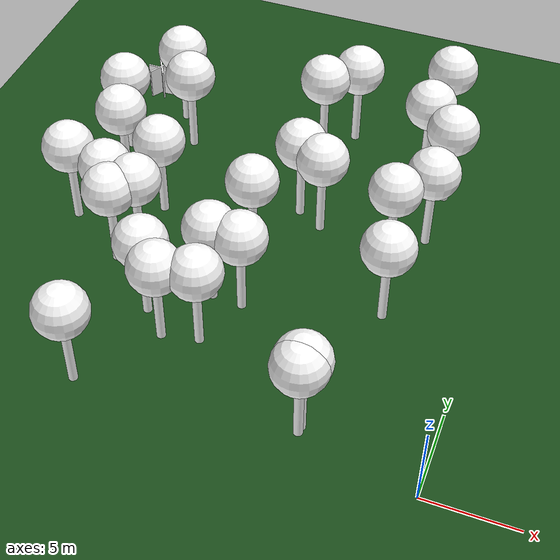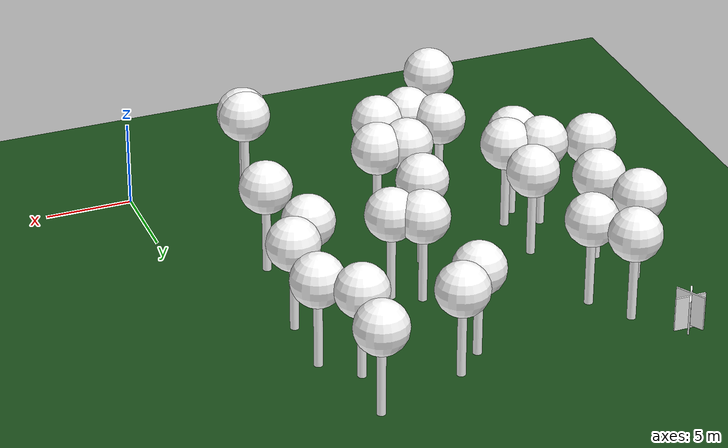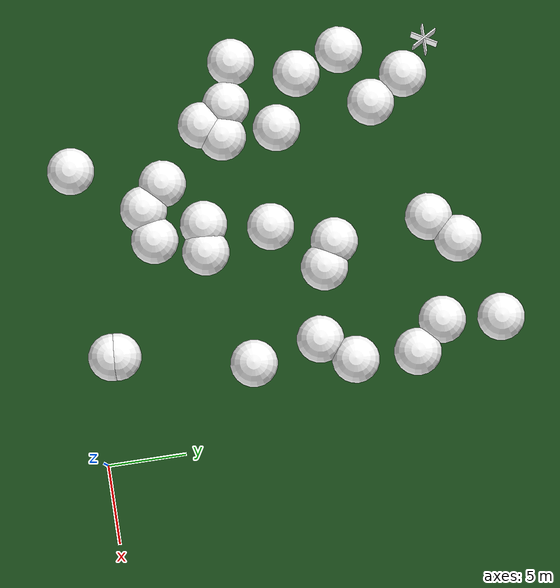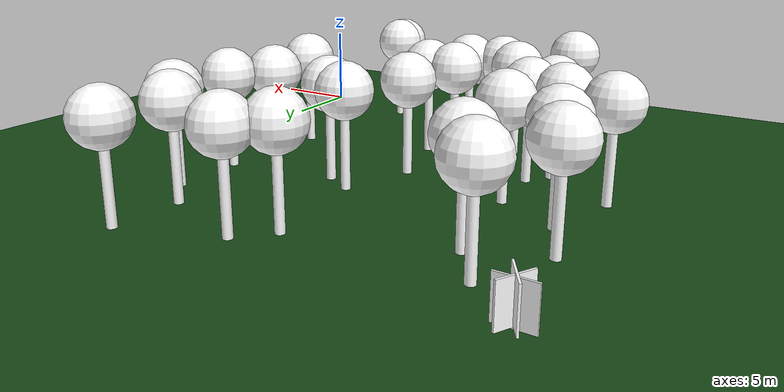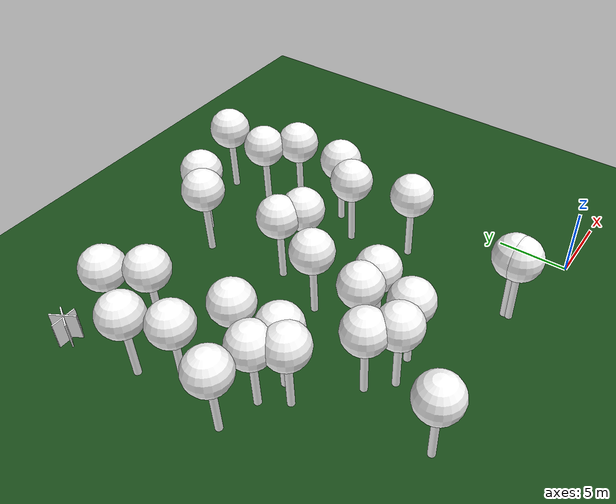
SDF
<sdf version="1.8">
 <world name="forest_world">
  <model name="fire_2">
   <pose>-23.95 23.95 1.00 0 0 0.00</pose>
   <static>true</static>
   <link name="fire_link">
    <visual name="fire_2_fire_main_0">
     <geometry><box><size>1.80 0.10 2.00</size></box></geometry>
     <material>
      <ambient>0.7 0.35 0.0 1</ambient>
      <diffuse>1 1 1 1</diffuse>
      <specular>0 0 0 1</specular>
      <emissive>0 0 0 1</emissive>
      <pbr>
       <metal><albedo_map>textures/fire.png</albedo_map><metalness>0.0</metalness><roughness>0.6</roughness></metal>
      </pbr>
     </material>
     <transparency>0.0</transparency>
     <cast_shadows>false</cast_shadows>
    </visual>
    <visual name="fire_2_fire_60_1">
     <pose>0.00 0.00 0.10 0 0 1.05</pose>
     <geometry><box><size>1.80 0.10 2.00</size></box></geometry>
     <material>
      <ambient>0.7 0.35 0.0 1</ambient>
      <diffuse>1 1 1 1</diffuse>
      <specular>0 0 0 1</specular>
      <emissive>0 0 0 1</emissive>
      <pbr>
       <metal><albedo_map>textures/fire.png</albedo_map><metalness>0.0</metalness><roughness>0.6</roughness></metal>
      </pbr>
     </material>
     <transparency>0.0</transparency>
     <cast_shadows>false</cast_shadows>
    </visual>
    <visual name="fire_2_fire_120_2">
     <pose>0.00 0.00 0.20 0 0 2.09</pose>
     <geometry><box><size>1.80 0.10 2.00</size></box></geometry>
     <material>
      <ambient>0.7 0.35 0.0 1</ambient>
      <diffuse>1 1 1 1</diffuse>
      <specular>0 0 0 1</specular>
      <emissive>0 0 0 1</emissive>
      <pbr>
       <metal><albedo_map>textures/fire.png</albedo_map><metalness>0.0</metalness><roughness>0.6</roughness></metal>
      </pbr>
     </material>
     <transparency>0.0</transparency>
     <cast_shadows>false</cast_shadows>
    </visual>
    <light type="point" name="fire_2_light_0">
     <pose>0.40 0.00 0.50 0 0 0</pose>
     <diffuse>1.0 0.7 0.3 1</diffuse>
     <specular>1.0 0.8 0.3 1</specular>
     <intensity>2</intensity>
     <attenuation>
      <range>2</range>
      <constant>0.1</constant>
      <linear>0.05</linear>
      <quadratic>0.02</quadratic>
     </attenuation>
     <cast_shadows>false</cast_shadows>
    </light>
    <light type="point" name="fire_2_light_1">
     <pose>-0.20 0.35 0.50 0 0 0</pose>
     <diffuse>1.0 0.7 0.3 1</diffuse>
     <specular>1.0 0.8 0.3 1</specular>
     <intensity>2</intensity>
     <attenuation>
      <range>2</range>
      <constant>0.1</constant>
      <linear>0.05</linear>
      <quadratic>0.02</quadratic>
     </attenuation>
     <cast_shadows>false</cast_shadows>
    </light>
    <light type="point" name="fire_2_light_2">
     <pose>-0.20 -0.35 0.50 0 0 0</pose>
     <diffuse>1.0 0.7 0.3 1</diffuse>
     <specular>1.0 0.8 0.3 1</specular>
     <intensity>2</intensity>
     <attenuation>
      <range>2</range>
      <constant>0.1</constant>
      <linear>0.05</linear>
      <quadratic>0.02</quadratic>
     </attenuation>
     <cast_shadows>false</cast_shadows>
    </light>
   </link>
   <plugin filename="libignition-gazebo-pose-publisher-system.so" name="ignition::gazebo::systems::PosePublisher">
    <frame_id>world</frame_id>
    <publish_link_pose>true</publish_link_pose>
    <use_pose_vector_msg>true</use_pose_vector_msg>
    <static_publisher>true</static_publisher>
    <static_update_frequency>1</static_update_frequency>
   </plugin>
  </model>
  <model name="tree_simple498">
   <static>1</static>
   <link name="link">
    <pose>0 0 0.1 0 -0 0</pose>
    <collision name="collision_trunk">
     <pose>0 0 2 0 -0 0</pose>
     <geometry><cylinder><radius>0.25</radius><length>4</length></cylinder></geometry>
    </collision>
    <collision name="collision_treetop">
     <pose>0 0 5.2 0 -0 0</pose>
     <geometry><sphere><radius>1.5</radius></sphere></geometry>
    </collision>
    <visual name="trunk">
     <pose>0 0 2 0 -0 0</pose>
     <geometry><cylinder><radius>0.25</radius><length>4</length></cylinder></geometry>
     <material>
      <ambient>0.5 0.5 0.5 1</ambient>
      <diffuse>1.0 1.0 1.0 1</diffuse>
      <specular>0.0 0.0 0.0 1</specular>
      <pbr>
       <metal>
        <albedo_map>../worlds/textures/tree_simple_trunk.jpg</albedo_map>
        <metalness>0.0</metalness>
        <roughness>0.8</roughness>
       </metal>
      </pbr>
     </material>
    </visual>
    <visual name="treetop">
     <pose>0 0 5.2 0 -0 0</pose>
     <geometry><sphere><radius>1.5</radius></sphere></geometry>
     <material>
      <ambient>0.5 0.5 0.5 1</ambient>
      <diffuse>1.0 1.0 1.0 1</diffuse>
      <specular>0.0 0.0 0.0 1</specular>
      <pbr>
       <metal>
        <albedo_map>../worlds/textures/tree_simple_treetop.jpg</albedo_map>
        <metalness>0.0</metalness>
        <roughness>0.9</roughness>
       </metal>
      </pbr>
     </material>
    </visual>
   </link>
   <pose>-20.062069779 9.09254194943 0 0 -0 0</pose>
  </model>
  <model name="tree_simple488">
   <static>1</static>
   <link name="link">
    <pose>0 0 0.1 0 -0 0</pose>
    <collision name="collision_trunk">
     <pose>0 0 2 0 -0 0</pose>
     <geometry><cylinder><radius>0.25</radius><length>4</length></cylinder></geometry>
    </collision>
    <collision name="collision_treetop">
     <pose>0 0 5.2 0 -0 0</pose>
     <geometry><sphere><radius>1.5</radius></sphere></geometry>
    </collision>
    <visual name="trunk">
     <pose>0 0 2 0 -0 0</pose>
     <geometry><cylinder><radius>0.25</radius><length>4</length></cylinder></geometry>
     <material>
      <ambient>0.5 0.5 0.5 1</ambient>
      <diffuse>1.0 1.0 1.0 1</diffuse>
      <specular>0.0 0.0 0.0 1</specular>
      <pbr>
       <metal>
        <albedo_map>../worlds/textures/tree_simple_trunk.jpg</albedo_map>
        <metalness>0.0</metalness>
        <roughness>0.8</roughness>
       </metal>
      </pbr>
     </material>
    </visual>
    <visual name="treetop">
     <pose>0 0 5.2 0 -0 0</pose>
     <geometry><sphere><radius>1.5</radius></sphere></geometry>
     <material>
      <ambient>0.5 0.5 0.5 1</ambient>
      <diffuse>1.0 1.0 1.0 1</diffuse>
      <specular>0.0 0.0 0.0 1</specular>
      <pbr>
       <metal>
        <albedo_map>../worlds/textures/tree_simple_treetop.jpg</albedo_map>
        <metalness>0.0</metalness>
        <roughness>0.9</roughness>
       </metal>
      </pbr>
     </material>
    </visual>
   </link>
   <pose>-13.1215818691 12.435953241 0 0 -0 0</pose>
  </model>
  <model name="tree_simple479">
   <static>1</static>
   <link name="link">
    <pose>0 0 0.1 0 -0 0</pose>
    <collision name="collision_trunk">
     <pose>0 0 2 0 -0 0</pose>
     <geometry><cylinder><radius>0.25</radius><length>4</length></cylinder></geometry>
    </collision>
    <collision name="collision_treetop">
     <pose>0 0 5.2 0 -0 0</pose>
     <geometry><sphere><radius>1.5</radius></sphere></geometry>
    </collision>
    <visual name="trunk">
     <pose>0 0 2 0 -0 0</pose>
     <geometry><cylinder><radius>0.25</radius><length>4</length></cylinder></geometry>
     <material>
      <ambient>0.5 0.5 0.5 1</ambient>
      <diffuse>1.0 1.0 1.0 1</diffuse>
      <specular>0.0 0.0 0.0 1</specular>
      <pbr>
       <metal>
        <albedo_map>../worlds/textures/tree_simple_trunk.jpg</albedo_map>
        <metalness>0.0</metalness>
        <roughness>0.8</roughness>
       </metal>
      </pbr>
     </material>
    </visual>
    <visual name="treetop">
     <pose>0 0 5.2 0 -0 0</pose>
     <geometry><sphere><radius>1.5</radius></sphere></geometry>
     <material>
      <ambient>0.5 0.5 0.5 1</ambient>
      <diffuse>1.0 1.0 1.0 1</diffuse>
      <specular>0.0 0.0 0.0 1</specular>
      <pbr>
       <metal>
        <albedo_map>../worlds/textures/tree_simple_treetop.jpg</albedo_map>
        <metalness>0.0</metalness>
        <roughness>0.9</roughness>
       </metal>
      </pbr>
     </material>
    </visual>
   </link>
   <pose>-12.2778199556 22.3020251283 0 0 -0 0</pose>
  </model>
  <model name="tree_simple471">
   <static>1</static>
   <link name="link">
    <pose>0 0 0.1 0 -0 0</pose>
    <collision name="collision_trunk">
     <pose>0 0 2 0 -0 0</pose>
     <geometry><cylinder><radius>0.25</radius><length>4</length></cylinder></geometry>
    </collision>
    <collision name="collision_treetop">
     <pose>0 0 5.2 0 -0 0</pose>
     <geometry><sphere><radius>1.5</radius></sphere></geometry>
    </collision>
    <visual name="trunk">
     <pose>0 0 2 0 -0 0</pose>
     <geometry><cylinder><radius>0.25</radius><length>4</length></cylinder></geometry>
     <material>
      <ambient>0.5 0.5 0.5 1</ambient>
      <diffuse>1.0 1.0 1.0 1</diffuse>
      <specular>0.0 0.0 0.0 1</specular>
      <pbr>
       <metal>
        <albedo_map>../worlds/textures/tree_simple_trunk.jpg</albedo_map>
        <metalness>0.0</metalness>
        <roughness>0.8</roughness>
       </metal>
      </pbr>
     </material>
    </visual>
    <visual name="treetop">
     <pose>0 0 5.2 0 -0 0</pose>
     <geometry><sphere><radius>1.5</radius></sphere></geometry>
     <material>
      <ambient>0.5 0.5 0.5 1</ambient>
      <diffuse>1.0 1.0 1.0 1</diffuse>
      <specular>0.0 0.0 0.0 1</specular>
      <pbr>
       <metal>
        <albedo_map>../worlds/textures/tree_simple_treetop.jpg</albedo_map>
        <metalness>0.0</metalness>
        <roughness>0.9</roughness>
       </metal>
      </pbr>
     </material>
    </visual>
   </link>
   <pose>-4.10985349052 16.4703272545 0 0 -0 0</pose>
  </model>
  <model name="tree_simple466">
   <static>1</static>
   <link name="link">
    <pose>0 0 0.1 0 -0 0</pose>
    <collision name="collision_trunk">
     <pose>0 0 2 0 -0 0</pose>
     <geometry><cylinder><radius>0.25</radius><length>4</length></cylinder></geometry>
    </collision>
    <collision name="collision_treetop">
     <pose>0 0 5.2 0 -0 0</pose>
     <geometry><sphere><radius>1.5</radius></sphere></geometry>
    </collision>
    <visual name="trunk">
     <pose>0 0 2 0 -0 0</pose>
     <geometry><cylinder><radius>0.25</radius><length>4</length></cylinder></geometry>
     <material>
      <ambient>0.5 0.5 0.5 1</ambient>
      <diffuse>1.0 1.0 1.0 1</diffuse>
      <specular>0.0 0.0 0.0 1</specular>
      <pbr>
       <metal>
        <albedo_map>../worlds/textures/tree_simple_trunk.jpg</albedo_map>
        <metalness>0.0</metalness>
        <roughness>0.8</roughness>
       </metal>
      </pbr>
     </material>
    </visual>
    <visual name="treetop">
     <pose>0 0 5.2 0 -0 0</pose>
     <geometry><sphere><radius>1.5</radius></sphere></geometry>
     <material>
      <ambient>0.5 0.5 0.5 1</ambient>
      <diffuse>1.0 1.0 1.0 1</diffuse>
      <specular>0.0 0.0 0.0 1</specular>
      <pbr>
       <metal>
        <albedo_map>../worlds/textures/tree_simple_treetop.jpg</albedo_map>
        <metalness>0.0</metalness>
        <roughness>0.9</roughness>
       </metal>
      </pbr>
     </material>
    </visual>
   </link>
   <pose>-5.77986608036 22.173723886 0 0 -0 0</pose>
  </model>
  <model name="tree_simple460">
   <static>1</static>
   <link name="link">
    <pose>0 0 0.1 0 -0 0</pose>
    <collision name="collision_trunk">
     <pose>0 0 2 0 -0 0</pose>
     <geometry><cylinder><radius>0.25</radius><length>4</length></cylinder></geometry>
    </collision>
    <collision name="collision_treetop">
     <pose>0 0 5.2 0 -0 0</pose>
     <geometry><sphere><radius>1.5</radius></sphere></geometry>
    </collision>
    <visual name="trunk">
     <pose>0 0 2 0 -0 0</pose>
     <geometry><cylinder><radius>0.25</radius><length>4</length></cylinder></geometry>
     <material>
      <ambient>0.5 0.5 0.5 1</ambient>
      <diffuse>1.0 1.0 1.0 1</diffuse>
      <specular>0.0 0.0 0.0 1</specular>
      <pbr>
       <metal>
        <albedo_map>../worlds/textures/tree_simple_trunk.jpg</albedo_map>
        <metalness>0.0</metalness>
        <roughness>0.8</roughness>
       </metal>
      </pbr>
     </material>
    </visual>
    <visual name="treetop">
     <pose>0 0 5.2 0 -0 0</pose>
     <geometry><sphere><radius>1.5</radius></sphere></geometry>
     <material>
      <ambient>0.5 0.5 0.5 1</ambient>
      <diffuse>1.0 1.0 1.0 1</diffuse>
      <specular>0.0 0.0 0.0 1</specular>
      <pbr>
       <metal>
        <albedo_map>../worlds/textures/tree_simple_treetop.jpg</albedo_map>
        <metalness>0.0</metalness>
        <roughness>0.9</roughness>
       </metal>
      </pbr>
     </material>
    </visual>
   </link>
   <pose>-19.1263542494 10.273291852 0 0 -0 0</pose>
  </model>
  <model name="tree_simple453">
   <static>1</static>
   <link name="link">
    <pose>0 0 0.1 0 -0 0</pose>
    <collision name="collision_trunk">
     <pose>0 0 2 0 -0 0</pose>
     <geometry><cylinder><radius>0.25</radius><length>4</length></cylinder></geometry>
    </collision>
    <collision name="collision_treetop">
     <pose>0 0 5.2 0 -0 0</pose>
     <geometry><sphere><radius>1.5</radius></sphere></geometry>
    </collision>
    <visual name="trunk">
     <pose>0 0 2 0 -0 0</pose>
     <geometry><cylinder><radius>0.25</radius><length>4</length></cylinder></geometry>
     <material>
      <ambient>0.5 0.5 0.5 1</ambient>
      <diffuse>1.0 1.0 1.0 1</diffuse>
      <specular>0.0 0.0 0.0 1</specular>
      <pbr>
       <metal>
        <albedo_map>../worlds/textures/tree_simple_trunk.jpg</albedo_map>
        <metalness>0.0</metalness>
        <roughness>0.8</roughness>
       </metal>
      </pbr>
     </material>
    </visual>
    <visual name="treetop">
     <pose>0 0 5.2 0 -0 0</pose>
     <geometry><sphere><radius>1.5</radius></sphere></geometry>
     <material>
      <ambient>0.5 0.5 0.5 1</ambient>
      <diffuse>1.0 1.0 1.0 1</diffuse>
      <specular>0.0 0.0 0.0 1</specular>
      <pbr>
       <metal>
        <albedo_map>../worlds/textures/tree_simple_treetop.jpg</albedo_map>
        <metalness>0.0</metalness>
        <roughness>0.9</roughness>
       </metal>
      </pbr>
     </material>
    </visual>
   </link>
   <pose>-12.135251061 8.19022164755 0 0 -0 0</pose>
  </model>
  <model name="tree_simple444">
   <static>1</static>
   <link name="link">
    <pose>0 0 0.1 0 -0 0</pose>
    <collision name="collision_trunk">
     <pose>0 0 2 0 -0 0</pose>
     <geometry><cylinder><radius>0.25</radius><length>4</length></cylinder></geometry>
    </collision>
    <collision name="collision_treetop">
     <pose>0 0 5.2 0 -0 0</pose>
     <geometry><sphere><radius>1.5</radius></sphere></geometry>
    </collision>
    <visual name="trunk">
     <pose>0 0 2 0 -0 0</pose>
     <geometry><cylinder><radius>0.25</radius><length>4</length></cylinder></geometry>
     <material>
      <ambient>0.5 0.5 0.5 1</ambient>
      <diffuse>1.0 1.0 1.0 1</diffuse>
      <specular>0.0 0.0 0.0 1</specular>
      <pbr>
       <metal>
        <albedo_map>../worlds/textures/tree_simple_trunk.jpg</albedo_map>
        <metalness>0.0</metalness>
        <roughness>0.8</roughness>
       </metal>
      </pbr>
     </material>
    </visual>
    <visual name="treetop">
     <pose>0 0 5.2 0 -0 0</pose>
     <geometry><sphere><radius>1.5</radius></sphere></geometry>
     <material>
      <ambient>0.5 0.5 0.5 1</ambient>
      <diffuse>1.0 1.0 1.0 1</diffuse>
      <specular>0.0 0.0 0.0 1</specular>
      <pbr>
       <metal>
        <albedo_map>../worlds/textures/tree_simple_treetop.jpg</albedo_map>
        <metalness>0.0</metalness>
        <roughness>0.9</roughness>
       </metal>
      </pbr>
     </material>
    </visual>
   </link>
   <pose>-23.7375888222 11.4825776361 0 0 -0 0</pose>
  </model>
  <model name="tree_simple424">
   <static>1</static>
   <link name="link">
    <pose>0 0 0.1 0 -0 0</pose>
    <collision name="collision_trunk">
     <pose>0 0 2 0 -0 0</pose>
     <geometry><cylinder><radius>0.25</radius><length>4</length></cylinder></geometry>
    </collision>
    <collision name="collision_treetop">
     <pose>0 0 5.2 0 -0 0</pose>
     <geometry><sphere><radius>1.5</radius></sphere></geometry>
    </collision>
    <visual name="trunk">
     <pose>0 0 2 0 -0 0</pose>
     <geometry><cylinder><radius>0.25</radius><length>4</length></cylinder></geometry>
     <material>
      <ambient>0.5 0.5 0.5 1</ambient>
      <diffuse>1.0 1.0 1.0 1</diffuse>
      <specular>0.0 0.0 0.0 1</specular>
      <pbr>
       <metal>
        <albedo_map>../worlds/textures/tree_simple_trunk.jpg</albedo_map>
        <metalness>0.0</metalness>
        <roughness>0.8</roughness>
       </metal>
      </pbr>
     </material>
    </visual>
    <visual name="treetop">
     <pose>0 0 5.2 0 -0 0</pose>
     <geometry><sphere><radius>1.5</radius></sphere></geometry>
     <material>
      <ambient>0.5 0.5 0.5 1</ambient>
      <diffuse>1.0 1.0 1.0 1</diffuse>
      <specular>0.0 0.0 0.0 1</specular>
      <pbr>
       <metal>
        <albedo_map>../worlds/textures/tree_simple_treetop.jpg</albedo_map>
        <metalness>0.0</metalness>
        <roughness>0.9</roughness>
       </metal>
      </pbr>
     </material>
    </visual>
   </link>
   <pose>-16.7770993139 6.12178979124 0 0 -0 0</pose>
  </model>
  <model name="tree_simple393">
   <static>1</static>
   <link name="link">
    <pose>0 0 0.1 0 -0 0</pose>
    <collision name="collision_trunk">
     <pose>0 0 2 0 -0 0</pose>
     <geometry><cylinder><radius>0.25</radius><length>4</length></cylinder></geometry>
    </collision>
    <collision name="collision_treetop">
     <pose>0 0 5.2 0 -0 0</pose>
     <geometry><sphere><radius>1.5</radius></sphere></geometry>
    </collision>
    <visual name="trunk">
     <pose>0 0 2 0 -0 0</pose>
     <geometry><cylinder><radius>0.25</radius><length>4</length></cylinder></geometry>
     <material>
      <ambient>0.5 0.5 0.5 1</ambient>
      <diffuse>1.0 1.0 1.0 1</diffuse>
      <specular>0.0 0.0 0.0 1</specular>
      <pbr>
       <metal>
        <albedo_map>../worlds/textures/tree_simple_trunk.jpg</albedo_map>
        <metalness>0.0</metalness>
        <roughness>0.8</roughness>
       </metal>
      </pbr>
     </material>
    </visual>
    <visual name="treetop">
     <pose>0 0 5.2 0 -0 0</pose>
     <geometry><sphere><radius>1.5</radius></sphere></geometry>
     <material>
      <ambient>0.5 0.5 0.5 1</ambient>
      <diffuse>1.0 1.0 1.0 1</diffuse>
      <specular>0.0 0.0 0.0 1</specular>
      <pbr>
       <metal>
        <albedo_map>../worlds/textures/tree_simple_treetop.jpg</albedo_map>
        <metalness>0.0</metalness>
        <roughness>0.9</roughness>
       </metal>
      </pbr>
     </material>
    </visual>
   </link>
   <pose>-19.2161378336 13.717868908 0 0 -0 0</pose>
  </model>
  <model name="tree_simple360">
   <static>1</static>
   <link name="link">
    <pose>0 0 0.1 0 -0 0</pose>
    <collision name="collision_trunk">
     <pose>0 0 2 0 -0 0</pose>
     <geometry><cylinder><radius>0.25</radius><length>4</length></cylinder></geometry>
    </collision>
    <collision name="collision_treetop">
     <pose>0 0 5.2 0 -0 0</pose>
     <geometry><sphere><radius>1.5</radius></sphere></geometry>
    </collision>
    <visual name="trunk">
     <pose>0 0 2 0 -0 0</pose>
     <geometry><cylinder><radius>0.25</radius><length>4</length></cylinder></geometry>
     <material>
      <ambient>0.5 0.5 0.5 1</ambient>
      <diffuse>1.0 1.0 1.0 1</diffuse>
      <specular>0.0 0.0 0.0 1</specular>
      <pbr>
       <metal>
        <albedo_map>../worlds/textures/tree_simple_trunk.jpg</albedo_map>
        <metalness>0.0</metalness>
        <roughness>0.8</roughness>
       </metal>
      </pbr>
     </material>
    </visual>
    <visual name="treetop">
     <pose>0 0 5.2 0 -0 0</pose>
     <geometry><sphere><radius>1.5</radius></sphere></geometry>
     <material>
      <ambient>0.5 0.5 0.5 1</ambient>
      <diffuse>1.0 1.0 1.0 1</diffuse>
      <specular>0.0 0.0 0.0 1</specular>
      <pbr>
       <metal>
        <albedo_map>../worlds/textures/tree_simple_treetop.jpg</albedo_map>
        <metalness>0.0</metalness>
        <roughness>0.9</roughness>
       </metal>
      </pbr>
     </material>
    </visual>
   </link>
   <pose>-13.8761955988 8.30702560736 0 0 -0 0</pose>
  </model>
  <model name="tree_simple338">
   <static>1</static>
   <link name="link">
    <pose>0 0 0.1 0 -0 0</pose>
    <collision name="collision_trunk">
     <pose>0 0 2 0 -0 0</pose>
     <geometry><cylinder><radius>0.25</radius><length>4</length></cylinder></geometry>
    </collision>
    <collision name="collision_treetop">
     <pose>0 0 5.2 0 -0 0</pose>
     <geometry><sphere><radius>1.5</radius></sphere></geometry>
    </collision>
    <visual name="trunk">
     <pose>0 0 2 0 -0 0</pose>
     <geometry><cylinder><radius>0.25</radius><length>4</length></cylinder></geometry>
     <material>
      <ambient>0.5 0.5 0.5 1</ambient>
      <diffuse>1.0 1.0 1.0 1</diffuse>
      <specular>0.0 0.0 0.0 1</specular>
      <pbr>
       <metal>
        <albedo_map>../worlds/textures/tree_simple_trunk.jpg</albedo_map>
        <metalness>0.0</metalness>
        <roughness>0.8</roughness>
       </metal>
      </pbr>
     </material>
    </visual>
    <visual name="treetop">
     <pose>0 0 5.2 0 -0 0</pose>
     <geometry><sphere><radius>1.5</radius></sphere></geometry>
     <material>
      <ambient>0.5 0.5 0.5 1</ambient>
      <diffuse>1.0 1.0 1.0 1</diffuse>
      <specular>0.0 0.0 0.0 1</specular>
      <pbr>
       <metal>
        <albedo_map>../worlds/textures/tree_simple_treetop.jpg</albedo_map>
        <metalness>0.0</metalness>
        <roughness>0.9</roughness>
       </metal>
      </pbr>
     </material>
    </visual>
   </link>
   <pose>-22.4236352143 15.4465495723 0 0 -0 0</pose>
  </model>
  <model name="tree_simple284">
   <static>1</static>
   <link name="link">
    <pose>0 0 0.1 0 -0 0</pose>
    <collision name="collision_trunk">
     <pose>0 0 2 0 -0 0</pose>
     <geometry><cylinder><radius>0.25</radius><length>4</length></cylinder></geometry>
    </collision>
    <collision name="collision_treetop">
     <pose>0 0 5.2 0 -0 0</pose>
     <geometry><sphere><radius>1.5</radius></sphere></geometry>
    </collision>
    <visual name="trunk">
     <pose>0 0 2 0 -0 0</pose>
     <geometry><cylinder><radius>0.25</radius><length>4</length></cylinder></geometry>
     <material>
      <ambient>0.5 0.5 0.5 1</ambient>
      <diffuse>1.0 1.0 1.0 1</diffuse>
      <specular>0.0 0.0 0.0 1</specular>
      <pbr>
       <metal>
        <albedo_map>../worlds/textures/tree_simple_trunk.jpg</albedo_map>
        <metalness>0.0</metalness>
        <roughness>0.8</roughness>
       </metal>
      </pbr>
     </material>
    </visual>
    <visual name="treetop">
     <pose>0 0 5.2 0 -0 0</pose>
     <geometry><sphere><radius>1.5</radius></sphere></geometry>
     <material>
      <ambient>0.5 0.5 0.5 1</ambient>
      <diffuse>1.0 1.0 1.0 1</diffuse>
      <specular>0.0 0.0 0.0 1</specular>
      <pbr>
       <metal>
        <albedo_map>../worlds/textures/tree_simple_treetop.jpg</albedo_map>
        <metalness>0.0</metalness>
        <roughness>0.9</roughness>
       </metal>
      </pbr>
     </material>
    </visual>
   </link>
   <pose>-18.3910783374 0.559962709575 0 0 -0 0</pose>
  </model>
  <model name="tree_simple282">
   <static>1</static>
   <link name="link">
    <pose>0 0 0.1 0 -0 0</pose>
    <collision name="collision_trunk">
     <pose>0 0 2 0 -0 0</pose>
     <geometry><cylinder><radius>0.25</radius><length>4</length></cylinder></geometry>
    </collision>
    <collision name="collision_treetop">
     <pose>0 0 5.2 0 -0 0</pose>
     <geometry><sphere><radius>1.5</radius></sphere></geometry>
    </collision>
    <visual name="trunk">
     <pose>0 0 2 0 -0 0</pose>
     <geometry><cylinder><radius>0.25</radius><length>4</length></cylinder></geometry>
     <material>
      <ambient>0.5 0.5 0.5 1</ambient>
      <diffuse>1.0 1.0 1.0 1</diffuse>
      <specular>0.0 0.0 0.0 1</specular>
      <pbr>
       <metal>
        <albedo_map>../worlds/textures/tree_simple_trunk.jpg</albedo_map>
        <metalness>0.0</metalness>
        <roughness>0.8</roughness>
       </metal>
      </pbr>
     </material>
    </visual>
    <visual name="treetop">
     <pose>0 0 5.2 0 -0 0</pose>
     <geometry><sphere><radius>1.5</radius></sphere></geometry>
     <material>
      <ambient>0.5 0.5 0.5 1</ambient>
      <diffuse>1.0 1.0 1.0 1</diffuse>
      <specular>0.0 0.0 0.0 1</specular>
      <pbr>
       <metal>
        <albedo_map>../worlds/textures/tree_simple_treetop.jpg</albedo_map>
        <metalness>0.0</metalness>
        <roughness>0.9</roughness>
       </metal>
      </pbr>
     </material>
    </visual>
   </link>
   <pose>-10.116665752 15.3935200089 0 0 -0 0</pose>
  </model>
  <model name="tree_simple251">
   <static>1</static>
   <link name="link">
    <pose>0 0 0.1 0 -0 0</pose>
    <collision name="collision_trunk">
     <pose>0 0 2 0 -0 0</pose>
     <geometry><cylinder><radius>0.25</radius><length>4</length></cylinder></geometry>
    </collision>
    <collision name="collision_treetop">
     <pose>0 0 5.2 0 -0 0</pose>
     <geometry><sphere><radius>1.5</radius></sphere></geometry>
    </collision>
    <visual name="trunk">
     <pose>0 0 2 0 -0 0</pose>
     <geometry><cylinder><radius>0.25</radius><length>4</length></cylinder></geometry>
     <material>
      <ambient>0.5 0.5 0.5 1</ambient>
      <diffuse>1.0 1.0 1.0 1</diffuse>
      <specular>0.0 0.0 0.0 1</specular>
      <pbr>
       <metal>
        <albedo_map>../worlds/textures/tree_simple_trunk.jpg</albedo_map>
        <metalness>0.0</metalness>
        <roughness>0.8</roughness>
       </metal>
      </pbr>
     </material>
    </visual>
    <visual name="treetop">
     <pose>0 0 5.2 0 -0 0</pose>
     <geometry><sphere><radius>1.5</radius></sphere></geometry>
     <material>
      <ambient>0.5 0.5 0.5 1</ambient>
      <diffuse>1.0 1.0 1.0 1</diffuse>
      <specular>0.0 0.0 0.0 1</specular>
      <pbr>
       <metal>
        <albedo_map>../worlds/textures/tree_simple_treetop.jpg</albedo_map>
        <metalness>0.0</metalness>
        <roughness>0.9</roughness>
       </metal>
      </pbr>
     </material>
    </visual>
   </link>
   <pose>-19.9479400909 19.7976665809 0 0 -0 0</pose>
  </model>
  <model name="tree_simple232">
   <static>1</static>
   <link name="link">
    <pose>0 0 0.1 0 -0 0</pose>
    <collision name="collision_trunk">
     <pose>0 0 2 0 -0 0</pose>
     <geometry><cylinder><radius>0.25</radius><length>4</length></cylinder></geometry>
    </collision>
    <collision name="collision_treetop">
     <pose>0 0 5.2 0 -0 0</pose>
     <geometry><sphere><radius>1.5</radius></sphere></geometry>
    </collision>
    <visual name="trunk">
     <pose>0 0 2 0 -0 0</pose>
     <geometry><cylinder><radius>0.25</radius><length>4</length></cylinder></geometry>
     <material>
      <ambient>0.5 0.5 0.5 1</ambient>
      <diffuse>1.0 1.0 1.0 1</diffuse>
      <specular>0.0 0.0 0.0 1</specular>
      <pbr>
       <metal>
        <albedo_map>../worlds/textures/tree_simple_trunk.jpg</albedo_map>
        <metalness>0.0</metalness>
        <roughness>0.8</roughness>
       </metal>
      </pbr>
     </material>
    </visual>
    <visual name="treetop">
     <pose>0 0 5.2 0 -0 0</pose>
     <geometry><sphere><radius>1.5</radius></sphere></geometry>
     <material>
      <ambient>0.5 0.5 0.5 1</ambient>
      <diffuse>1.0 1.0 1.0 1</diffuse>
      <specular>0.0 0.0 0.0 1</specular>
      <pbr>
       <metal>
        <albedo_map>../worlds/textures/tree_simple_treetop.jpg</albedo_map>
        <metalness>0.0</metalness>
        <roughness>0.9</roughness>
       </metal>
      </pbr>
     </material>
    </visual>
   </link>
   <pose>-11.6357803634 16.236207717 0 0 -0 0</pose>
  </model>
  <model name="tree_simple226">
   <static>1</static>
   <link name="link">
    <pose>0 0 0.1 0 -0 0</pose>
    <collision name="collision_trunk">
     <pose>0 0 2 0 -0 0</pose>
     <geometry><cylinder><radius>0.25</radius><length>4</length></cylinder></geometry>
    </collision>
    <collision name="collision_treetop">
     <pose>0 0 5.2 0 -0 0</pose>
     <geometry><sphere><radius>1.5</radius></sphere></geometry>
    </collision>
    <visual name="trunk">
     <pose>0 0 2 0 -0 0</pose>
     <geometry><cylinder><radius>0.25</radius><length>4</length></cylinder></geometry>
     <material>
      <ambient>0.5 0.5 0.5 1</ambient>
      <diffuse>1.0 1.0 1.0 1</diffuse>
      <specular>0.0 0.0 0.0 1</specular>
      <pbr>
       <metal>
        <albedo_map>../worlds/textures/tree_simple_trunk.jpg</albedo_map>
        <metalness>0.0</metalness>
        <roughness>0.8</roughness>
       </metal>
      </pbr>
     </material>
    </visual>
    <visual name="treetop">
     <pose>0 0 5.2 0 -0 0</pose>
     <geometry><sphere><radius>1.5</radius></sphere></geometry>
     <material>
      <ambient>0.5 0.5 0.5 1</ambient>
      <diffuse>1.0 1.0 1.0 1</diffuse>
      <specular>0.0 0.0 0.0 1</specular>
      <pbr>
       <metal>
        <albedo_map>../worlds/textures/tree_simple_treetop.jpg</albedo_map>
        <metalness>0.0</metalness>
        <roughness>0.9</roughness>
       </metal>
      </pbr>
     </material>
    </visual>
   </link>
   <pose>-15.3498793375 4.7340721764 0 0 -0 0</pose>
  </model>
  <model name="tree_simple187">
   <static>1</static>
   <link name="link">
    <pose>0 0 0.1 0 -0 0</pose>
    <collision name="collision_trunk">
     <pose>0 0 2 0 -0 0</pose>
     <geometry><cylinder><radius>0.25</radius><length>4</length></cylinder></geometry>
    </collision>
    <collision name="collision_treetop">
     <pose>0 0 5.2 0 -0 0</pose>
     <geometry><sphere><radius>1.5</radius></sphere></geometry>
    </collision>
    <visual name="trunk">
     <pose>0 0 2 0 -0 0</pose>
     <geometry><cylinder><radius>0.25</radius><length>4</length></cylinder></geometry>
     <material>
      <ambient>0.5 0.5 0.5 1</ambient>
      <diffuse>1.0 1.0 1.0 1</diffuse>
      <specular>0.0 0.0 0.0 1</specular>
      <pbr>
       <metal>
        <albedo_map>../worlds/textures/tree_simple_trunk.jpg</albedo_map>
        <metalness>0.0</metalness>
        <roughness>0.8</roughness>
       </metal>
      </pbr>
     </material>
    </visual>
    <visual name="treetop">
     <pose>0 0 5.2 0 -0 0</pose>
     <geometry><sphere><radius>1.5</radius></sphere></geometry>
     <material>
      <ambient>0.5 0.5 0.5 1</ambient>
      <diffuse>1.0 1.0 1.0 1</diffuse>
      <specular>0.0 0.0 0.0 1</specular>
      <pbr>
       <metal>
        <albedo_map>../worlds/textures/tree_simple_treetop.jpg</albedo_map>
        <metalness>0.0</metalness>
        <roughness>0.9</roughness>
       </metal>
      </pbr>
     </material>
    </visual>
   </link>
   <pose>-6.45553635196 1.79140972094 0 0 -0 0</pose>
  </model>
  <model name="tree_simple165">
   <static>1</static>
   <link name="link">
    <pose>0 0 0.1 0 -0 0</pose>
    <collision name="collision_trunk">
     <pose>0 0 2 0 -0 0</pose>
     <geometry><cylinder><radius>0.25</radius><length>4</length></cylinder></geometry>
    </collision>
    <collision name="collision_treetop">
     <pose>0 0 5.2 0 -0 0</pose>
     <geometry><sphere><radius>1.5</radius></sphere></geometry>
    </collision>
    <visual name="trunk">
     <pose>0 0 2 0 -0 0</pose>
     <geometry><cylinder><radius>0.25</radius><length>4</length></cylinder></geometry>
     <material>
      <ambient>0.5 0.5 0.5 1</ambient>
      <diffuse>1.0 1.0 1.0 1</diffuse>
      <specular>0.0 0.0 0.0 1</specular>
      <pbr>
       <metal>
        <albedo_map>../worlds/textures/tree_simple_trunk.jpg</albedo_map>
        <metalness>0.0</metalness>
        <roughness>0.8</roughness>
       </metal>
      </pbr>
     </material>
    </visual>
    <visual name="treetop">
     <pose>0 0 5.2 0 -0 0</pose>
     <geometry><sphere><radius>1.5</radius></sphere></geometry>
     <material>
      <ambient>0.5 0.5 0.5 1</ambient>
      <diffuse>1.0 1.0 1.0 1</diffuse>
      <specular>0.0 0.0 0.0 1</specular>
      <pbr>
       <metal>
        <albedo_map>../worlds/textures/tree_simple_treetop.jpg</albedo_map>
        <metalness>0.0</metalness>
        <roughness>0.9</roughness>
       </metal>
      </pbr>
     </material>
    </visual>
   </link>
   <pose>-6.476660544 1.43780692284 0 0 -0 0</pose>
  </model>
  <model name="tree_simple163">
   <static>1</static>
   <link name="link">
    <pose>0 0 0.1 0 -0 0</pose>
    <collision name="collision_trunk">
     <pose>0 0 2 0 -0 0</pose>
     <geometry><cylinder><radius>0.25</radius><length>4</length></cylinder></geometry>
    </collision>
    <collision name="collision_treetop">
     <pose>0 0 5.2 0 -0 0</pose>
     <geometry><sphere><radius>1.5</radius></sphere></geometry>
    </collision>
    <visual name="trunk">
     <pose>0 0 2 0 -0 0</pose>
     <geometry><cylinder><radius>0.25</radius><length>4</length></cylinder></geometry>
     <material>
      <ambient>0.5 0.5 0.5 1</ambient>
      <diffuse>1.0 1.0 1.0 1</diffuse>
      <specular>0.0 0.0 0.0 1</specular>
      <pbr>
       <metal>
        <albedo_map>../worlds/textures/tree_simple_trunk.jpg</albedo_map>
        <metalness>0.0</metalness>
        <roughness>0.8</roughness>
       </metal>
      </pbr>
     </material>
    </visual>
    <visual name="treetop">
     <pose>0 0 5.2 0 -0 0</pose>
     <geometry><sphere><radius>1.5</radius></sphere></geometry>
     <material>
      <ambient>0.5 0.5 0.5 1</ambient>
      <diffuse>1.0 1.0 1.0 1</diffuse>
      <specular>0.0 0.0 0.0 1</specular>
      <pbr>
       <metal>
        <albedo_map>../worlds/textures/tree_simple_treetop.jpg</albedo_map>
        <metalness>0.0</metalness>
        <roughness>0.9</roughness>
       </metal>
      </pbr>
     </material>
    </visual>
   </link>
   <pose>-21.1018337127 10.7784018303 0 0 -0 0</pose>
  </model>
  <model name="tree_simple158">
   <static>1</static>
   <link name="link">
    <pose>0 0 0.1 0 -0 0</pose>
    <collision name="collision_trunk">
     <pose>0 0 2 0 -0 0</pose>
     <geometry><cylinder><radius>0.25</radius><length>4</length></cylinder></geometry>
    </collision>
    <collision name="collision_treetop">
     <pose>0 0 5.2 0 -0 0</pose>
     <geometry><sphere><radius>1.5</radius></sphere></geometry>
    </collision>
    <visual name="trunk">
     <pose>0 0 2 0 -0 0</pose>
     <geometry><cylinder><radius>0.25</radius><length>4</length></cylinder></geometry>
     <material>
      <ambient>0.5 0.5 0.5 1</ambient>
      <diffuse>1.0 1.0 1.0 1</diffuse>
      <specular>0.0 0.0 0.0 1</specular>
      <pbr>
       <metal>
        <albedo_map>../worlds/textures/tree_simple_trunk.jpg</albedo_map>
        <metalness>0.0</metalness>
        <roughness>0.8</roughness>
       </metal>
      </pbr>
     </material>
    </visual>
    <visual name="treetop">
     <pose>0 0 5.2 0 -0 0</pose>
     <geometry><sphere><radius>1.5</radius></sphere></geometry>
     <material>
      <ambient>0.5 0.5 0.5 1</ambient>
      <diffuse>1.0 1.0 1.0 1</diffuse>
      <specular>0.0 0.0 0.0 1</specular>
      <pbr>
       <metal>
        <albedo_map>../worlds/textures/tree_simple_treetop.jpg</albedo_map>
        <metalness>0.0</metalness>
        <roughness>0.9</roughness>
       </metal>
      </pbr>
     </material>
    </visual>
   </link>
   <pose>-5.6810181288 14.4728525014 0 0 -0 0</pose>
  </model>
  <model name="tree_simple130">
   <static>1</static>
   <link name="link">
    <pose>0 0 0.1 0 -0 0</pose>
    <collision name="collision_trunk">
     <pose>0 0 2 0 -0 0</pose>
     <geometry><cylinder><radius>0.25</radius><length>4</length></cylinder></geometry>
    </collision>
    <collision name="collision_treetop">
     <pose>0 0 5.2 0 -0 0</pose>
     <geometry><sphere><radius>1.5</radius></sphere></geometry>
    </collision>
    <visual name="trunk">
     <pose>0 0 2 0 -0 0</pose>
     <geometry><cylinder><radius>0.25</radius><length>4</length></cylinder></geometry>
     <material>
      <ambient>0.5 0.5 0.5 1</ambient>
      <diffuse>1.0 1.0 1.0 1</diffuse>
      <specular>0.0 0.0 0.0 1</specular>
      <pbr>
       <metal>
        <albedo_map>../worlds/textures/tree_simple_trunk.jpg</albedo_map>
        <metalness>0.0</metalness>
        <roughness>0.8</roughness>
       </metal>
      </pbr>
     </material>
    </visual>
    <visual name="treetop">
     <pose>0 0 5.2 0 -0 0</pose>
     <geometry><sphere><radius>1.5</radius></sphere></geometry>
     <material>
      <ambient>0.5 0.5 0.5 1</ambient>
      <diffuse>1.0 1.0 1.0 1</diffuse>
      <specular>0.0 0.0 0.0 1</specular>
      <pbr>
       <metal>
        <albedo_map>../worlds/textures/tree_simple_treetop.jpg</albedo_map>
        <metalness>0.0</metalness>
        <roughness>0.9</roughness>
       </metal>
      </pbr>
     </material>
    </visual>
   </link>
   <pose>-4.79782028342 10.1484836022 0 0 -0 0</pose>
  </model>
  <model name="tree_simple110">
   <static>1</static>
   <link name="link">
    <pose>0 0 0.1 0 -0 0</pose>
    <collision name="collision_trunk">
     <pose>0 0 2 0 -0 0</pose>
     <geometry><cylinder><radius>0.25</radius><length>4</length></cylinder></geometry>
    </collision>
    <collision name="collision_treetop">
     <pose>0 0 5.2 0 -0 0</pose>
     <geometry><sphere><radius>1.5</radius></sphere></geometry>
    </collision>
    <visual name="trunk">
     <pose>0 0 2 0 -0 0</pose>
     <geometry><cylinder><radius>0.25</radius><length>4</length></cylinder></geometry>
     <material>
      <ambient>0.5 0.5 0.5 1</ambient>
      <diffuse>1.0 1.0 1.0 1</diffuse>
      <specular>0.0 0.0 0.0 1</specular>
      <pbr>
       <metal>
        <albedo_map>../worlds/textures/tree_simple_trunk.jpg</albedo_map>
        <metalness>0.0</metalness>
        <roughness>0.8</roughness>
       </metal>
      </pbr>
     </material>
    </visual>
    <visual name="treetop">
     <pose>0 0 5.2 0 -0 0</pose>
     <geometry><sphere><radius>1.5</radius></sphere></geometry>
     <material>
      <ambient>0.5 0.5 0.5 1</ambient>
      <diffuse>1.0 1.0 1.0 1</diffuse>
      <specular>0.0 0.0 0.0 1</specular>
      <pbr>
       <metal>
        <albedo_map>../worlds/textures/tree_simple_treetop.jpg</albedo_map>
        <metalness>0.0</metalness>
        <roughness>0.9</roughness>
       </metal>
      </pbr>
     </material>
    </visual>
   </link>
   <pose>-5.41034027226 25.8326134986 0 0 -0 0</pose>
  </model>
  <model name="tree_simple103">
   <static>1</static>
   <link name="link">
    <pose>0 0 0.1 0 -0 0</pose>
    <collision name="collision_trunk">
     <pose>0 0 2 0 -0 0</pose>
     <geometry><cylinder><radius>0.25</radius><length>4</length></cylinder></geometry>
    </collision>
    <collision name="collision_treetop">
     <pose>0 0 5.2 0 -0 0</pose>
     <geometry><sphere><radius>1.5</radius></sphere></geometry>
    </collision>
    <visual name="trunk">
     <pose>0 0 2 0 -0 0</pose>
     <geometry><cylinder><radius>0.25</radius><length>4</length></cylinder></geometry>
     <material>
      <ambient>0.5 0.5 0.5 1</ambient>
      <diffuse>1.0 1.0 1.0 1</diffuse>
      <specular>0.0 0.0 0.0 1</specular>
      <pbr>
       <metal>
        <albedo_map>../worlds/textures/tree_simple_trunk.jpg</albedo_map>
        <metalness>0.0</metalness>
        <roughness>0.8</roughness>
       </metal>
      </pbr>
     </material>
    </visual>
    <visual name="treetop">
     <pose>0 0 5.2 0 -0 0</pose>
     <geometry><sphere><radius>1.5</radius></sphere></geometry>
     <material>
      <ambient>0.5 0.5 0.5 1</ambient>
      <diffuse>1.0 1.0 1.0 1</diffuse>
      <specular>0.0 0.0 0.0 1</specular>
      <pbr>
       <metal>
        <albedo_map>../worlds/textures/tree_simple_treetop.jpg</albedo_map>
        <metalness>0.0</metalness>
        <roughness>0.9</roughness>
       </metal>
      </pbr>
     </material>
    </visual>
   </link>
   <pose>-23.5128318618 18.2920552876 0 0 -0 0</pose>
  </model>
  <model name="tree_simple86">
   <static>1</static>
   <link name="link">
    <pose>0 0 0.1 0 -0 0</pose>
    <collision name="collision_trunk">
     <pose>0 0 2 0 -0 0</pose>
     <geometry><cylinder><radius>0.25</radius><length>4</length></cylinder></geometry>
    </collision>
    <collision name="collision_treetop">
     <pose>0 0 5.2 0 -0 0</pose>
     <geometry><sphere><radius>1.5</radius></sphere></geometry>
    </collision>
    <visual name="trunk">
     <pose>0 0 2 0 -0 0</pose>
     <geometry><cylinder><radius>0.25</radius><length>4</length></cylinder></geometry>
     <material>
      <ambient>0.5 0.5 0.5 1</ambient>
      <diffuse>1.0 1.0 1.0 1</diffuse>
      <specular>0.0 0.0 0.0 1</specular>
      <pbr>
       <metal>
        <albedo_map>../worlds/textures/tree_simple_trunk.jpg</albedo_map>
        <metalness>0.0</metalness>
        <roughness>0.8</roughness>
       </metal>
      </pbr>
     </material>
    </visual>
    <visual name="treetop">
     <pose>0 0 5.2 0 -0 0</pose>
     <geometry><sphere><radius>1.5</radius></sphere></geometry>
     <material>
      <ambient>0.5 0.5 0.5 1</ambient>
      <diffuse>1.0 1.0 1.0 1</diffuse>
      <specular>0.0 0.0 0.0 1</specular>
      <pbr>
       <metal>
        <albedo_map>../worlds/textures/tree_simple_treetop.jpg</albedo_map>
        <metalness>0.0</metalness>
        <roughness>0.9</roughness>
       </metal>
      </pbr>
     </material>
    </visual>
   </link>
   <pose>-4.02162942473 20.3702086514 0 0 -0 0</pose>
  </model>
  <model name="tree_simple79">
   <static>1</static>
   <link name="link">
    <pose>0 0 0.1 0 -0 0</pose>
    <collision name="collision_trunk">
     <pose>0 0 2 0 -0 0</pose>
     <geometry><cylinder><radius>0.25</radius><length>4</length></cylinder></geometry>
    </collision>
    <collision name="collision_treetop">
     <pose>0 0 5.2 0 -0 0</pose>
     <geometry><sphere><radius>1.5</radius></sphere></geometry>
    </collision>
    <visual name="trunk">
     <pose>0 0 2 0 -0 0</pose>
     <geometry><cylinder><radius>0.25</radius><length>4</length></cylinder></geometry>
     <material>
      <ambient>0.5 0.5 0.5 1</ambient>
      <diffuse>1.0 1.0 1.0 1</diffuse>
      <specular>0.0 0.0 0.0 1</specular>
      <pbr>
       <metal>
        <albedo_map>../worlds/textures/tree_simple_trunk.jpg</albedo_map>
        <metalness>0.0</metalness>
        <roughness>0.8</roughness>
       </metal>
      </pbr>
     </material>
    </visual>
    <visual name="treetop">
     <pose>0 0 5.2 0 -0 0</pose>
     <geometry><sphere><radius>1.5</radius></sphere></geometry>
     <material>
      <ambient>0.5 0.5 0.5 1</ambient>
      <diffuse>1.0 1.0 1.0 1</diffuse>
      <specular>0.0 0.0 0.0 1</specular>
      <pbr>
       <metal>
        <albedo_map>../worlds/textures/tree_simple_treetop.jpg</albedo_map>
        <metalness>0.0</metalness>
        <roughness>0.9</roughness>
       </metal>
      </pbr>
     </material>
    </visual>
   </link>
   <pose>-21.429711887 22.0499315705 0 0 -0 0</pose>
  </model>
  <model name="tree_simple77">
   <static>1</static>
   <link name="link">
    <pose>0 0 0.1 0 -0 0</pose>
    <collision name="collision_trunk">
     <pose>0 0 2 0 -0 0</pose>
     <geometry><cylinder><radius>0.25</radius><length>4</length></cylinder></geometry>
    </collision>
    <collision name="collision_treetop">
     <pose>0 0 5.2 0 -0 0</pose>
     <geometry><sphere><radius>1.5</radius></sphere></geometry>
    </collision>
    <visual name="trunk">
     <pose>0 0 2 0 -0 0</pose>
     <geometry><cylinder><radius>0.25</radius><length>4</length></cylinder></geometry>
     <material>
      <ambient>0.5 0.5 0.5 1</ambient>
      <diffuse>1.0 1.0 1.0 1</diffuse>
      <specular>0.0 0.0 0.0 1</specular>
      <pbr>
       <metal>
        <albedo_map>../worlds/textures/tree_simple_trunk.jpg</albedo_map>
        <metalness>0.0</metalness>
        <roughness>0.8</roughness>
       </metal>
      </pbr>
     </material>
    </visual>
    <visual name="treetop">
     <pose>0 0 5.2 0 -0 0</pose>
     <geometry><sphere><radius>1.5</radius></sphere></geometry>
     <material>
      <ambient>0.5 0.5 0.5 1</ambient>
      <diffuse>1.0 1.0 1.0 1</diffuse>
      <specular>0.0 0.0 0.0 1</specular>
      <pbr>
       <metal>
        <albedo_map>../worlds/textures/tree_simple_treetop.jpg</albedo_map>
        <metalness>0.0</metalness>
        <roughness>0.9</roughness>
       </metal>
      </pbr>
     </material>
    </visual>
   </link>
   <pose>-10.6651451359 23.9118826029 0 0 -0 0</pose>
  </model>
  <model name="tree_simple21">
   <static>1</static>
   <link name="link">
    <pose>0 0 0.1 0 -0 0</pose>
    <collision name="collision_trunk">
     <pose>0 0 2 0 -0 0</pose>
     <geometry><cylinder><radius>0.25</radius><length>4</length></cylinder></geometry>
    </collision>
    <collision name="collision_treetop">
     <pose>0 0 5.2 0 -0 0</pose>
     <geometry><sphere><radius>1.5</radius></sphere></geometry>
    </collision>
    <visual name="trunk">
     <pose>0 0 2 0 -0 0</pose>
     <geometry><cylinder><radius>0.25</radius><length>4</length></cylinder></geometry>
     <material>
      <ambient>0.5 0.5 0.5 1</ambient>
      <diffuse>1.0 1.0 1.0 1</diffuse>
      <specular>0.0 0.0 0.0 1</specular>
      <pbr>
       <metal>
        <albedo_map>../worlds/textures/tree_simple_trunk.jpg</albedo_map>
        <metalness>0.0</metalness>
        <roughness>0.8</roughness>
       </metal>
      </pbr>
     </material>
    </visual>
    <visual name="treetop">
     <pose>0 0 5.2 0 -0 0</pose>
     <geometry><sphere><radius>1.5</radius></sphere></geometry>
     <material>
      <ambient>0.5 0.5 0.5 1</ambient>
      <diffuse>1.0 1.0 1.0 1</diffuse>
      <specular>0.0 0.0 0.0 1</specular>
      <pbr>
       <metal>
        <albedo_map>../worlds/textures/tree_simple_treetop.jpg</albedo_map>
        <metalness>0.0</metalness>
        <roughness>0.9</roughness>
       </metal>
      </pbr>
     </material>
    </visual>
   </link>
   <pose>-13.3304563305 5.13608108551 0 0 -0 0</pose>
  </model>
  <model name="ground_plane">
   <static>true</static>
   <link name="link">
    <collision name="collision">
     <geometry><mesh><uri>../worlds/textures/grass_plane.dae</uri><scale>1 1 1</scale></mesh></geometry>
     <surface><friction><ode><mu>1</mu><mu2>1</mu2></ode></friction></surface>
    </collision>
    <visual name="snow">
     <cast_shadows>false</cast_shadows>
     <geometry><mesh><uri>../worlds/textures/grass_plane.dae</uri><scale>1 1 1</scale></mesh></geometry>
     <material>
      <ambient>0.05 0.2 0.05 1</ambient>
      <diffuse>0.1 0.3 0.1 1</diffuse>
      <specular>0.05 0.05 0.05 1</specular>
     </material>
    </visual>
   </link>
  </model>
 </world>
</sdf>
